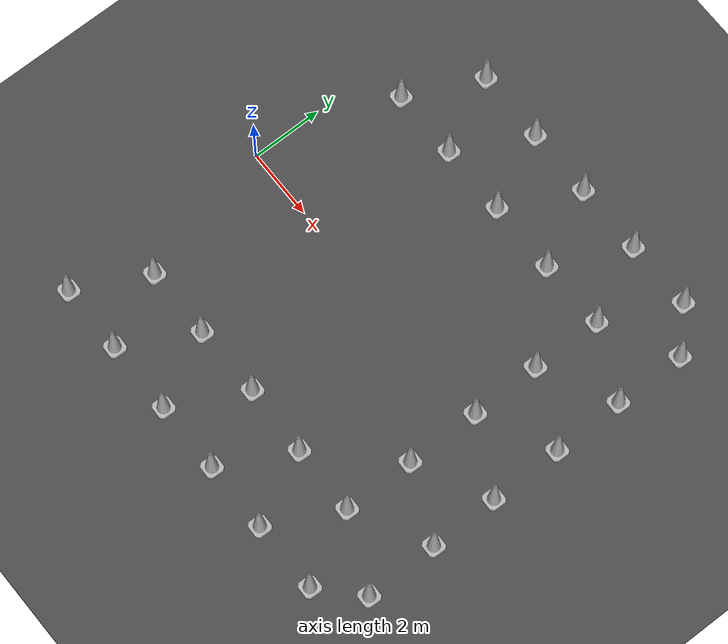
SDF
<sdf version="1.7">
 <world name="default">
  <model name="ground_plane">
   <static>1</static>
   <link name="link">
    <collision name="collision">
     <geometry><plane><normal>0 0 1</normal><size>100 100</size></plane></geometry>
     <surface><friction><ode><mu>100</mu><mu2>50</mu2></ode></friction></surface>
    </collision>
    <visual name="visual">
     <cast_shadows>0</cast_shadows>
     <geometry><plane><normal>0 0 1</normal><size>100 100</size></plane></geometry>
     <material>
      <script><uri>file://media/materials/scripts/gazebo.material</uri><name>Gazebo/Grey</name></script>
     </material>
    </visual>
    <velocity_decay><linear>0</linear><angular>0</angular></velocity_decay>
   </link>
  </model>
  <model name="Construction Cone">
   <link name="link">
    <collision name="collision">
     <geometry>
      <mesh><scale>10 10 10</scale><uri>model://construction_cone/meshes/construction_cone.dae</uri></mesh>
     </geometry>
    </collision>
    <visual name="visual">
     <geometry>
      <mesh><scale>10 10 10</scale><uri>model://construction_cone/meshes/construction_cone.dae</uri></mesh>
     </geometry>
    </visual>
    <velocity_decay><linear>0</linear><angular>0</angular></velocity_decay>
    <inertial>
     <inertia><ixx>1</ixx><ixy>0</ixy><ixz>0</ixz><iyy>1</iyy><iyz>0</iyz><izz>1</izz></inertia>
     <mass>1</mass>
    </inertial>
   </link>
   <pose>0.011489 -6.00634 0.05 0 -0 -0.029351</pose>
   <static>0</static>
  </model>
  <model name="Construction Cone_1">
   <link name="link">
    <collision name="collision">
     <geometry>
      <mesh><scale>10 10 10</scale><uri>model://construction_cone/meshes/construction_cone.dae</uri></mesh>
     </geometry>
    </collision>
    <visual name="visual">
     <geometry>
      <mesh><scale>10 10 10</scale><uri>model://construction_cone/meshes/construction_cone.dae</uri></mesh>
     </geometry>
    </visual>
    <velocity_decay><linear>0</linear><angular>0</angular></velocity_decay>
    <inertial>
     <inertia><ixx>1</ixx><ixy>0</ixy><ixz>0</ixz><iyy>1</iyy><iyz>0</iyz><izz>1</izz></inertia>
     <mass>1</mass>
    </inertial>
   </link>
   <pose>0.994623 -4.0172 0.05 0 -0 -0.029351</pose>
   <static>0</static>
  </model>
  <model name="Construction Cone_clone">
   <link name="link">
    <collision name="collision">
     <geometry>
      <mesh><scale>10 10 10</scale><uri>model://construction_cone/meshes/construction_cone.dae</uri></mesh>
     </geometry>
    </collision>
    <visual name="visual">
     <geometry>
      <mesh><scale>10 10 10</scale><uri>model://construction_cone/meshes/construction_cone.dae</uri></mesh>
     </geometry>
    </visual>
    <velocity_decay><linear>0</linear><angular>0</angular></velocity_decay>
    <inertial>
     <inertia><ixx>1</ixx><ixy>0</ixy><ixz>0</ixz><iyy>1</iyy><iyz>0</iyz><izz>1</izz></inertia>
     <mass>1</mass>
    </inertial>
   </link>
   <pose>1.95367 -6.00415 0.049169 -0.000193 6e-06 -0.028992</pose>
   <static>0</static>
  </model>
  <model name="Construction Cone_clone_0">
   <link name="link">
    <collision name="collision">
     <geometry>
      <mesh><scale>10 10 10</scale><uri>model://construction_cone/meshes/construction_cone.dae</uri></mesh>
     </geometry>
    </collision>
    <visual name="visual">
     <geometry>
      <mesh><scale>10 10 10</scale><uri>model://construction_cone/meshes/construction_cone.dae</uri></mesh>
     </geometry>
    </visual>
    <velocity_decay><linear>0</linear><angular>0</angular></velocity_decay>
    <inertial>
     <inertia><ixx>1</ixx><ixy>0</ixy><ixz>0</ixz><iyy>1</iyy><iyz>0</iyz><izz>1</izz></inertia>
     <mass>1</mass>
    </inertial>
   </link>
   <pose>4.00298 -6.0068 0.049169 -0.000193 6e-06 -0.028992</pose>
   <static>0</static>
  </model>
  <model name="Construction Cone_clone_1">
   <link name="link">
    <collision name="collision">
     <geometry>
      <mesh><scale>10 10 10</scale><uri>model://construction_cone/meshes/construction_cone.dae</uri></mesh>
     </geometry>
    </collision>
    <visual name="visual">
     <geometry>
      <mesh><scale>10 10 10</scale><uri>model://construction_cone/meshes/construction_cone.dae</uri></mesh>
     </geometry>
    </visual>
    <velocity_decay><linear>0</linear><angular>0</angular></velocity_decay>
    <inertial>
     <inertia><ixx>1</ixx><ixy>0</ixy><ixz>0</ixz><iyy>1</iyy><iyz>0</iyz><izz>1</izz></inertia>
     <mass>1</mass>
    </inertial>
   </link>
   <pose>5.99757 -6.00423 0.049599 -0.000193 6e-06 -0.028992</pose>
   <static>0</static>
  </model>
  <model name="Construction Cone_clone_2">
   <link name="link">
    <collision name="collision">
     <geometry>
      <mesh><scale>10 10 10</scale><uri>model://construction_cone/meshes/construction_cone.dae</uri></mesh>
     </geometry>
    </collision>
    <visual name="visual">
     <geometry>
      <mesh><scale>10 10 10</scale><uri>model://construction_cone/meshes/construction_cone.dae</uri></mesh>
     </geometry>
    </visual>
    <velocity_decay><linear>0</linear><angular>0</angular></velocity_decay>
    <inertial>
     <inertia><ixx>1</ixx><ixy>0</ixy><ixz>0</ixz><iyy>1</iyy><iyz>0</iyz><izz>1</izz></inertia>
     <mass>1</mass>
    </inertial>
   </link>
   <pose>7.95896 -6.0096 0.05 0 -1e-06 -0.028992</pose>
   <static>0</static>
  </model>
  <model name="Construction Cone_0_clone_3_clone_3">
   <link name="link">
    <collision name="collision">
     <geometry>
      <mesh><scale>10 10 10</scale><uri>model://construction_cone/meshes/construction_cone.dae</uri></mesh>
     </geometry>
    </collision>
    <visual name="visual">
     <geometry>
      <mesh><scale>10 10 10</scale><uri>model://construction_cone/meshes/construction_cone.dae</uri></mesh>
     </geometry>
    </visual>
    <velocity_decay><linear>0</linear><angular>0</angular></velocity_decay>
    <inertial>
     <inertia><ixx>1</ixx><ixy>0</ixy><ixz>0</ixz><iyy>1</iyy><iyz>0</iyz><izz>1</izz></inertia>
     <mass>1</mass>
    </inertial>
   </link>
   <pose>1.99935 6.0127 0.05 0 -0 -0.022775</pose>
   <static>0</static>
  </model>
  <model name="big_asphalt_plane">
   <static>1</static>
   <link name="link">
    <collision name="collision"><geometry><box><size>50 50 0.1</size></box></geometry></collision>
    <visual name="visual">
     <cast_shadows>0</cast_shadows>
     <geometry><box><size>50 50 0.1</size></box></geometry>
     <material>
      <script>
       <uri>model://big_asphalt_plane/materials/scripts</uri>
       <uri>model://big_asphalt_plane/materials/textures</uri>
       <name>vrc/asphalt</name>
      </script>
     </material>
    </visual>
   </link>
   <pose>4.86808 7.06702 0 0 -0 0</pose>
  </model>
  <model name="Construction Cone_clone_2_clone">
   <link name="link">
    <collision name="collision">
     <geometry>
      <mesh><scale>10 10 10</scale><uri>model://construction_cone/meshes/construction_cone.dae</uri></mesh>
     </geometry>
    </collision>
    <visual name="visual">
     <geometry>
      <mesh><scale>10 10 10</scale><uri>model://construction_cone/meshes/construction_cone.dae</uri></mesh>
     </geometry>
    </visual>
    <velocity_decay><linear>0</linear><angular>0</angular></velocity_decay>
    <inertial>
     <inertia><ixx>1</ixx><ixy>0</ixy><ixz>0</ixz><iyy>1</iyy><iyz>0</iyz><izz>1</izz></inertia>
     <mass>1</mass>
    </inertial>
   </link>
   <pose>9.95856 -5.99308 0.05 0 -1e-06 -0.028992</pose>
   <static>0</static>
  </model>
  <model name="Construction Cone_clone_2_clone_0">
   <link name="link">
    <collision name="collision">
     <geometry>
      <mesh><scale>10 10 10</scale><uri>model://construction_cone/meshes/construction_cone.dae</uri></mesh>
     </geometry>
    </collision>
    <visual name="visual">
     <geometry>
      <mesh><scale>10 10 10</scale><uri>model://construction_cone/meshes/construction_cone.dae</uri></mesh>
     </geometry>
    </visual>
    <velocity_decay><linear>0</linear><angular>0</angular></velocity_decay>
    <inertial>
     <inertia><ixx>1</ixx><ixy>0</ixy><ixz>0</ixz><iyy>1</iyy><iyz>0</iyz><izz>1</izz></inertia>
     <mass>1</mass>
    </inertial>
   </link>
   <pose>11.0427 -4.98835 0.05 0 -1e-06 -0.028992</pose>
   <static>0</static>
  </model>
  <model name="Construction Cone_clone_2_clone_1">
   <link name="link">
    <collision name="collision">
     <geometry>
      <mesh><scale>10 10 10</scale><uri>model://construction_cone/meshes/construction_cone.dae</uri></mesh>
     </geometry>
    </collision>
    <visual name="visual">
     <geometry>
      <mesh><scale>10 10 10</scale><uri>model://construction_cone/meshes/construction_cone.dae</uri></mesh>
     </geometry>
    </visual>
    <velocity_decay><linear>0</linear><angular>0</angular></velocity_decay>
    <inertial>
     <inertia><ixx>1</ixx><ixy>0</ixy><ixz>0</ixz><iyy>1</iyy><iyz>0</iyz><izz>1</izz></inertia>
     <mass>1</mass>
    </inertial>
   </link>
   <pose>11.0229 -2.93821 0.05 0 -1e-06 -0.028992</pose>
   <static>0</static>
  </model>
  <model name="Construction Cone_clone_2_clone_2">
   <link name="link">
    <collision name="collision">
     <geometry>
      <mesh><scale>10 10 10</scale><uri>model://construction_cone/meshes/construction_cone.dae</uri></mesh>
     </geometry>
    </collision>
    <visual name="visual">
     <geometry>
      <mesh><scale>10 10 10</scale><uri>model://construction_cone/meshes/construction_cone.dae</uri></mesh>
     </geometry>
    </visual>
    <velocity_decay><linear>0</linear><angular>0</angular></velocity_decay>
    <inertial>
     <inertia><ixx>1</ixx><ixy>0</ixy><ixz>0</ixz><iyy>1</iyy><iyz>0</iyz><izz>1</izz></inertia>
     <mass>1</mass>
    </inertial>
   </link>
   <pose>11.006 -1.01298 0.05 0 -1e-06 -0.028992</pose>
   <static>0</static>
  </model>
  <model name="Construction Cone_clone_2_clone_3">
   <link name="link">
    <collision name="collision">
     <geometry>
      <mesh><scale>10 10 10</scale><uri>model://construction_cone/meshes/construction_cone.dae</uri></mesh>
     </geometry>
    </collision>
    <visual name="visual">
     <geometry>
      <mesh><scale>10 10 10</scale><uri>model://construction_cone/meshes/construction_cone.dae</uri></mesh>
     </geometry>
    </visual>
    <velocity_decay><linear>0</linear><angular>0</angular></velocity_decay>
    <inertial>
     <inertia><ixx>1</ixx><ixy>0</ixy><ixz>0</ixz><iyy>1</iyy><iyz>0</iyz><izz>1</izz></inertia>
     <mass>1</mass>
    </inertial>
   </link>
   <pose>10.9985 1.02949 0.05 0 -1e-06 -0.028992</pose>
   <static>0</static>
  </model>
  <model name="Construction Cone_clone_2_clone_4">
   <link name="link">
    <collision name="collision">
     <geometry>
      <mesh><scale>10 10 10</scale><uri>model://construction_cone/meshes/construction_cone.dae</uri></mesh>
     </geometry>
    </collision>
    <visual name="visual">
     <geometry>
      <mesh><scale>10 10 10</scale><uri>model://construction_cone/meshes/construction_cone.dae</uri></mesh>
     </geometry>
    </visual>
    <velocity_decay><linear>0</linear><angular>0</angular></velocity_decay>
    <inertial>
     <inertia><ixx>1</ixx><ixy>0</ixy><ixz>0</ixz><iyy>1</iyy><iyz>0</iyz><izz>1</izz></inertia>
     <mass>1</mass>
    </inertial>
   </link>
   <pose>10.9743 3.03434 0.05 0 -1e-06 -0.028992</pose>
   <static>0</static>
  </model>
  <model name="Construction Cone_clone_2_clone_5">
   <link name="link">
    <collision name="collision">
     <geometry>
      <mesh><scale>10 10 10</scale><uri>model://construction_cone/meshes/construction_cone.dae</uri></mesh>
     </geometry>
    </collision>
    <visual name="visual">
     <geometry>
      <mesh><scale>10 10 10</scale><uri>model://construction_cone/meshes/construction_cone.dae</uri></mesh>
     </geometry>
    </visual>
    <velocity_decay><linear>0</linear><angular>0</angular></velocity_decay>
    <inertial>
     <inertia><ixx>1</ixx><ixy>0</ixy><ixz>0</ixz><iyy>1</iyy><iyz>0</iyz><izz>1</izz></inertia>
     <mass>1</mass>
    </inertial>
   </link>
   <pose>11.0012 5.0342 0.05 0 -1e-06 -0.028992</pose>
   <static>0</static>
  </model>
  <model name="Construction Cone_clone_2_clone_6">
   <link name="link">
    <collision name="collision">
     <geometry>
      <mesh><scale>10 10 10</scale><uri>model://construction_cone/meshes/construction_cone.dae</uri></mesh>
     </geometry>
    </collision>
    <visual name="visual">
     <geometry>
      <mesh><scale>10 10 10</scale><uri>model://construction_cone/meshes/construction_cone.dae</uri></mesh>
     </geometry>
    </visual>
    <velocity_decay><linear>0</linear><angular>0</angular></velocity_decay>
    <inertial>
     <inertia><ixx>1</ixx><ixy>0</ixy><ixz>0</ixz><iyy>1</iyy><iyz>0</iyz><izz>1</izz></inertia>
     <mass>1</mass>
    </inertial>
   </link>
   <pose>9.94518 6.03182 0.05 0 -1e-06 -0.028992</pose>
   <static>0</static>
  </model>
  <model name="Construction Cone_clone_2_clone_7">
   <link name="link">
    <collision name="collision">
     <geometry>
      <mesh><scale>10 10 10</scale><uri>model://construction_cone/meshes/construction_cone.dae</uri></mesh>
     </geometry>
    </collision>
    <visual name="visual">
     <geometry>
      <mesh><scale>10 10 10</scale><uri>model://construction_cone/meshes/construction_cone.dae</uri></mesh>
     </geometry>
    </visual>
    <velocity_decay><linear>0</linear><angular>0</angular></velocity_decay>
    <inertial>
     <inertia><ixx>1</ixx><ixy>0</ixy><ixz>0</ixz><iyy>1</iyy><iyz>0</iyz><izz>1</izz></inertia>
     <mass>1</mass>
    </inertial>
   </link>
   <pose>7.99833 5.99904 0.05 0 -1e-06 -0.028992</pose>
   <static>0</static>
  </model>
  <model name="Construction Cone_clone_2_clone_8">
   <link name="link">
    <collision name="collision">
     <geometry>
      <mesh><scale>10 10 10</scale><uri>model://construction_cone/meshes/construction_cone.dae</uri></mesh>
     </geometry>
    </collision>
    <visual name="visual">
     <geometry>
      <mesh><scale>10 10 10</scale><uri>model://construction_cone/meshes/construction_cone.dae</uri></mesh>
     </geometry>
    </visual>
    <velocity_decay><linear>0</linear><angular>0</angular></velocity_decay>
    <inertial>
     <inertia><ixx>1</ixx><ixy>0</ixy><ixz>0</ixz><iyy>1</iyy><iyz>0</iyz><izz>1</izz></inertia>
     <mass>1</mass>
    </inertial>
   </link>
   <pose>6.0016 5.99402 0.05 0 -1e-06 -0.028992</pose>
   <static>0</static>
  </model>
  <model name="Construction Cone_clone_2_clone_9">
   <link name="link">
    <collision name="collision">
     <geometry>
      <mesh><scale>10 10 10</scale><uri>model://construction_cone/meshes/construction_cone.dae</uri></mesh>
     </geometry>
    </collision>
    <visual name="visual">
     <geometry>
      <mesh><scale>10 10 10</scale><uri>model://construction_cone/meshes/construction_cone.dae</uri></mesh>
     </geometry>
    </visual>
    <velocity_decay><linear>0</linear><angular>0</angular></velocity_decay>
    <inertial>
     <inertia><ixx>1</ixx><ixy>0</ixy><ixz>0</ixz><iyy>1</iyy><iyz>0</iyz><izz>1</izz></inertia>
     <mass>1</mass>
    </inertial>
   </link>
   <pose>4.04549 5.99483 0.05 0 -1e-06 -0.028992</pose>
   <static>0</static>
  </model>
  <model name="Construction Cone_1_clone_6">
   <link name="link">
    <collision name="collision">
     <geometry>
      <mesh><scale>10 10 10</scale><uri>model://construction_cone/meshes/construction_cone.dae</uri></mesh>
     </geometry>
    </collision>
    <visual name="visual">
     <geometry>
      <mesh><scale>10 10 10</scale><uri>model://construction_cone/meshes/construction_cone.dae</uri></mesh>
     </geometry>
    </visual>
    <velocity_decay><linear>0</linear><angular>0</angular></velocity_decay>
    <inertial>
     <inertia><ixx>1</ixx><ixy>0</ixy><ixz>0</ixz><iyy>1</iyy><iyz>0</iyz><izz>1</izz></inertia>
     <mass>1</mass>
    </inertial>
   </link>
   <pose>3.0001 -4.02126 0.05 0 0 -0.029351</pose>
   <static>0</static>
  </model>
  <model name="Construction Cone_1_clone_7">
   <link name="link">
    <collision name="collision">
     <geometry>
      <mesh><scale>10 10 10</scale><uri>model://construction_cone/meshes/construction_cone.dae</uri></mesh>
     </geometry>
    </collision>
    <visual name="visual">
     <geometry>
      <mesh><scale>10 10 10</scale><uri>model://construction_cone/meshes/construction_cone.dae</uri></mesh>
     </geometry>
    </visual>
    <velocity_decay><linear>0</linear><angular>0</angular></velocity_decay>
    <inertial>
     <inertia><ixx>1</ixx><ixy>0</ixy><ixz>0</ixz><iyy>1</iyy><iyz>0</iyz><izz>1</izz></inertia>
     <mass>1</mass>
    </inertial>
   </link>
   <pose>5.01686 -3.97243 0.05 0 0 -0.029351</pose>
   <static>0</static>
  </model>
  <model name="Construction Cone_1_clone_8">
   <link name="link">
    <collision name="collision">
     <geometry>
      <mesh><scale>10 10 10</scale><uri>model://construction_cone/meshes/construction_cone.dae</uri></mesh>
     </geometry>
    </collision>
    <visual name="visual">
     <geometry>
      <mesh><scale>10 10 10</scale><uri>model://construction_cone/meshes/construction_cone.dae</uri></mesh>
     </geometry>
    </visual>
    <velocity_decay><linear>0</linear><angular>0</angular></velocity_decay>
    <inertial>
     <inertia><ixx>1</ixx><ixy>0</ixy><ixz>0</ixz><iyy>1</iyy><iyz>0</iyz><izz>1</izz></inertia>
     <mass>1</mass>
    </inertial>
   </link>
   <pose>7.00965 -4.02826 0.05 0 0 -0.029351</pose>
   <static>0</static>
  </model>
  <model name="Construction Cone_1_clone_9">
   <link name="link">
    <collision name="collision">
     <geometry>
      <mesh><scale>10 10 10</scale><uri>model://construction_cone/meshes/construction_cone.dae</uri></mesh>
     </geometry>
    </collision>
    <visual name="visual">
     <geometry>
      <mesh><scale>10 10 10</scale><uri>model://construction_cone/meshes/construction_cone.dae</uri></mesh>
     </geometry>
    </visual>
    <velocity_decay><linear>0</linear><angular>0</angular></velocity_decay>
    <inertial>
     <inertia><ixx>1</ixx><ixy>0</ixy><ixz>0</ixz><iyy>1</iyy><iyz>0</iyz><izz>1</izz></inertia>
     <mass>1</mass>
    </inertial>
   </link>
   <pose>8.94313 -4.03207 0.05 0 0 -0.029351</pose>
   <static>0</static>
  </model>
  <model name="Construction Cone_1_clone_10">
   <link name="link">
    <collision name="collision">
     <geometry>
      <mesh><scale>10 10 10</scale><uri>model://construction_cone/meshes/construction_cone.dae</uri></mesh>
     </geometry>
    </collision>
    <visual name="visual">
     <geometry>
      <mesh><scale>10 10 10</scale><uri>model://construction_cone/meshes/construction_cone.dae</uri></mesh>
     </geometry>
    </visual>
    <velocity_decay><linear>0</linear><angular>0</angular></velocity_decay>
    <inertial>
     <inertia><ixx>1</ixx><ixy>0</ixy><ixz>0</ixz><iyy>1</iyy><iyz>0</iyz><izz>1</izz></inertia>
     <mass>1</mass>
    </inertial>
   </link>
   <pose>8.96001 -2.03962 0.05 0 0 -0.029351</pose>
   <static>0</static>
  </model>
  <model name="Construction Cone_1_clone_11">
   <link name="link">
    <collision name="collision">
     <geometry>
      <mesh><scale>10 10 10</scale><uri>model://construction_cone/meshes/construction_cone.dae</uri></mesh>
     </geometry>
    </collision>
    <visual name="visual">
     <geometry>
      <mesh><scale>10 10 10</scale><uri>model://construction_cone/meshes/construction_cone.dae</uri></mesh>
     </geometry>
    </visual>
    <velocity_decay><linear>0</linear><angular>0</angular></velocity_decay>
    <inertial>
     <inertia><ixx>1</ixx><ixy>0</ixy><ixz>0</ixz><iyy>1</iyy><iyz>0</iyz><izz>1</izz></inertia>
     <mass>1</mass>
    </inertial>
   </link>
   <pose>8.97521 0.030902 0.05 0 0 -0.029351</pose>
   <static>0</static>
  </model>
  <model name="Construction Cone_1_clone_12">
   <link name="link">
    <collision name="collision">
     <geometry>
      <mesh><scale>10 10 10</scale><uri>model://construction_cone/meshes/construction_cone.dae</uri></mesh>
     </geometry>
    </collision>
    <visual name="visual">
     <geometry>
      <mesh><scale>10 10 10</scale><uri>model://construction_cone/meshes/construction_cone.dae</uri></mesh>
     </geometry>
    </visual>
    <velocity_decay><linear>0</linear><angular>0</angular></velocity_decay>
    <inertial>
     <inertia><ixx>1</ixx><ixy>0</ixy><ixz>0</ixz><iyy>1</iyy><iyz>0</iyz><izz>1</izz></inertia>
     <mass>1</mass>
    </inertial>
   </link>
   <pose>8.95326 1.99659 0.05 0 0 -0.029351</pose>
   <static>0</static>
  </model>
  <model name="Construction Cone_1_clone_13">
   <link name="link">
    <collision name="collision">
     <geometry>
      <mesh><scale>10 10 10</scale><uri>model://construction_cone/meshes/construction_cone.dae</uri></mesh>
     </geometry>
    </collision>
    <visual name="visual">
     <geometry>
      <mesh><scale>10 10 10</scale><uri>model://construction_cone/meshes/construction_cone.dae</uri></mesh>
     </geometry>
    </visual>
    <velocity_decay><linear>0</linear><angular>0</angular></velocity_decay>
    <inertial>
     <inertia><ixx>1</ixx><ixy>0</ixy><ixz>0</ixz><iyy>1</iyy><iyz>0</iyz><izz>1</izz></inertia>
     <mass>1</mass>
    </inertial>
   </link>
   <pose>8.98333 3.97602 0.05 0 0 -0.029351</pose>
   <static>0</static>
  </model>
  <model name="Construction Cone_1_clone_14">
   <link name="link">
    <collision name="collision">
     <geometry>
      <mesh><scale>10 10 10</scale><uri>model://construction_cone/meshes/construction_cone.dae</uri></mesh>
     </geometry>
    </collision>
    <visual name="visual">
     <geometry>
      <mesh><scale>10 10 10</scale><uri>model://construction_cone/meshes/construction_cone.dae</uri></mesh>
     </geometry>
    </visual>
    <velocity_decay><linear>0</linear><angular>0</angular></velocity_decay>
    <inertial>
     <inertia><ixx>1</ixx><ixy>0</ixy><ixz>0</ixz><iyy>1</iyy><iyz>0</iyz><izz>1</izz></inertia>
     <mass>1</mass>
    </inertial>
   </link>
   <pose>7.03151 3.93436 0.05 0 0 -0.029351</pose>
   <static>0</static>
  </model>
  <model name="Construction Cone_1_clone_15">
   <link name="link">
    <collision name="collision">
     <geometry>
      <mesh><scale>10 10 10</scale><uri>model://construction_cone/meshes/construction_cone.dae</uri></mesh>
     </geometry>
    </collision>
    <visual name="visual">
     <geometry>
      <mesh><scale>10 10 10</scale><uri>model://construction_cone/meshes/construction_cone.dae</uri></mesh>
     </geometry>
    </visual>
    <velocity_decay><linear>0</linear><angular>0</angular></velocity_decay>
    <inertial>
     <inertia><ixx>1</ixx><ixy>0</ixy><ixz>0</ixz><iyy>1</iyy><iyz>0</iyz><izz>1</izz></inertia>
     <mass>1</mass>
    </inertial>
   </link>
   <pose>5.00056 3.95049 0.05 0 0 -0.029351</pose>
   <static>0</static>
  </model>
  <model name="Construction Cone_1_clone_16">
   <link name="link">
    <collision name="collision">
     <geometry>
      <mesh><scale>10 10 10</scale><uri>model://construction_cone/meshes/construction_cone.dae</uri></mesh>
     </geometry>
    </collision>
    <visual name="visual">
     <geometry>
      <mesh><scale>10 10 10</scale><uri>model://construction_cone/meshes/construction_cone.dae</uri></mesh>
     </geometry>
    </visual>
    <velocity_decay><linear>0</linear><angular>0</angular></velocity_decay>
    <inertial>
     <inertia><ixx>1</ixx><ixy>0</ixy><ixz>0</ixz><iyy>1</iyy><iyz>0</iyz><izz>1</izz></inertia>
     <mass>1</mass>
    </inertial>
   </link>
   <pose>3.00906 3.96737 0.05 0 0 -0.029351</pose>
   <static>0</static>
  </model>
  <model name="Construction Cone_1_clone_17">
   <link name="link">
    <collision name="collision">
     <geometry>
      <mesh><scale>10 10 10</scale><uri>model://construction_cone/meshes/construction_cone.dae</uri></mesh>
     </geometry>
    </collision>
    <visual name="visual">
     <geometry>
      <mesh><scale>10 10 10</scale><uri>model://construction_cone/meshes/construction_cone.dae</uri></mesh>
     </geometry>
    </visual>
    <velocity_decay><linear>0</linear><angular>0</angular></velocity_decay>
    <inertial>
     <inertia><ixx>1</ixx><ixy>0</ixy><ixz>0</ixz><iyy>1</iyy><iyz>0</iyz><izz>1</izz></inertia>
     <mass>1</mass>
    </inertial>
   </link>
   <pose>1.0517 3.95002 0.05 0 0 -0.029351</pose>
   <static>0</static>
  </model>
 </world>
</sdf>
